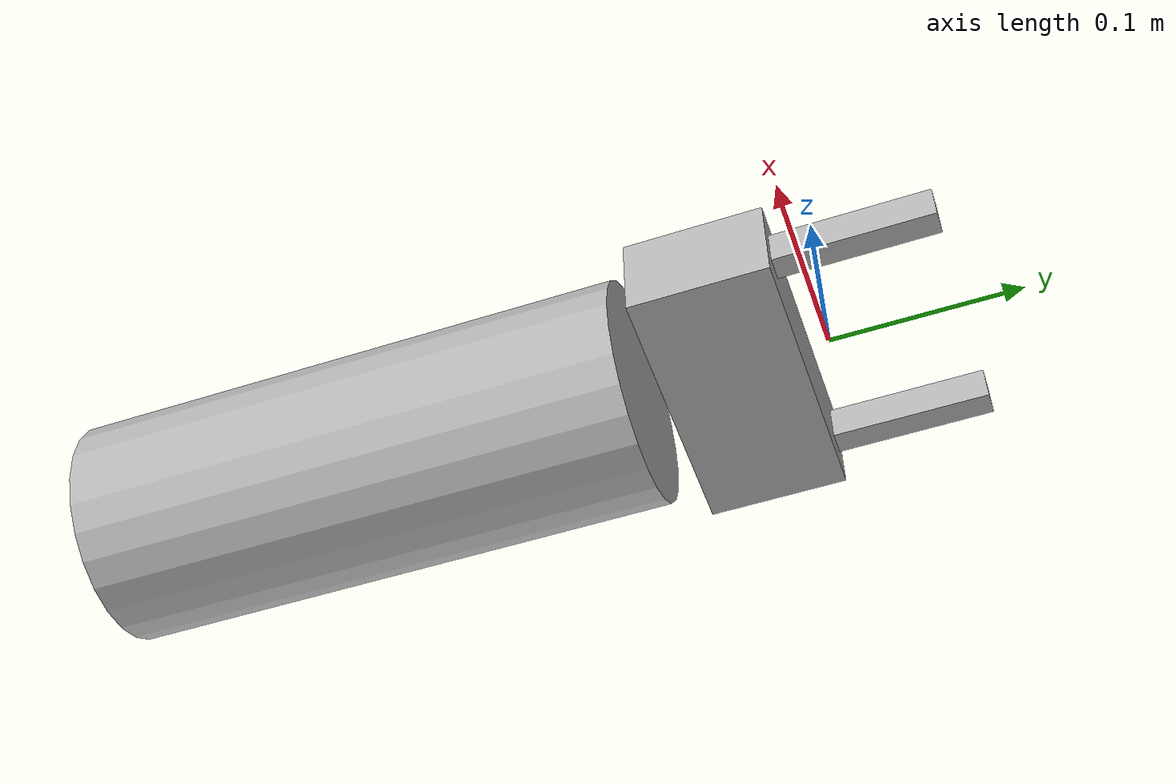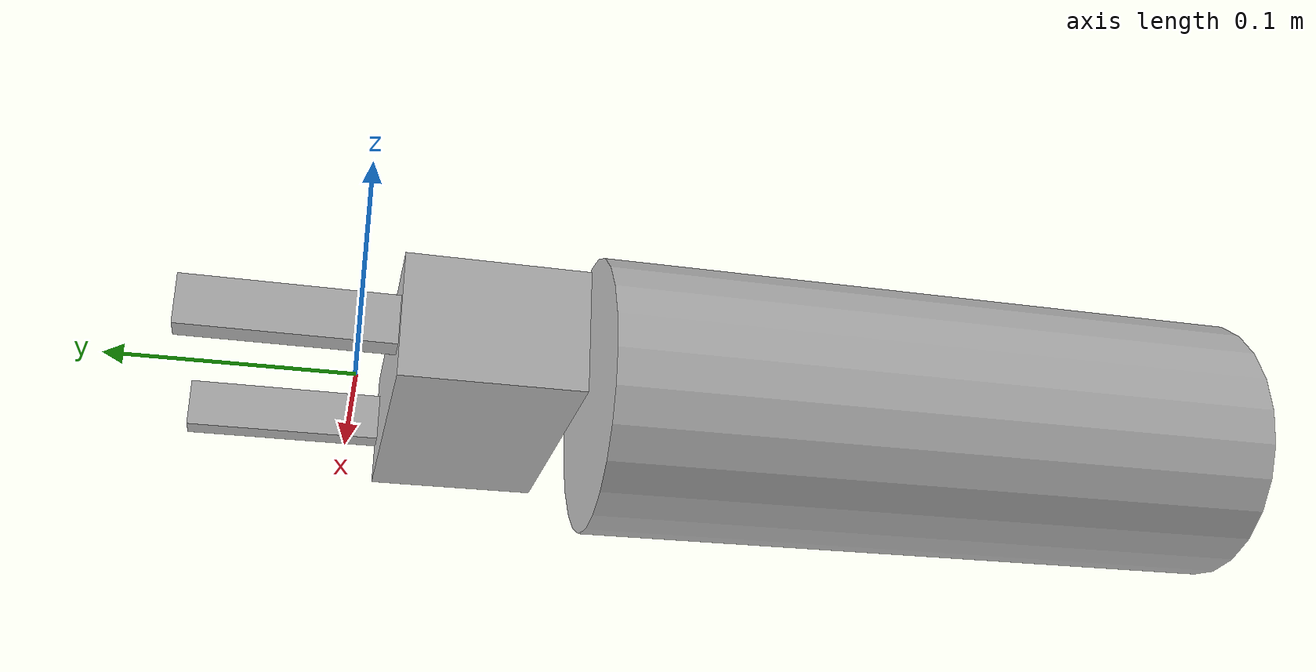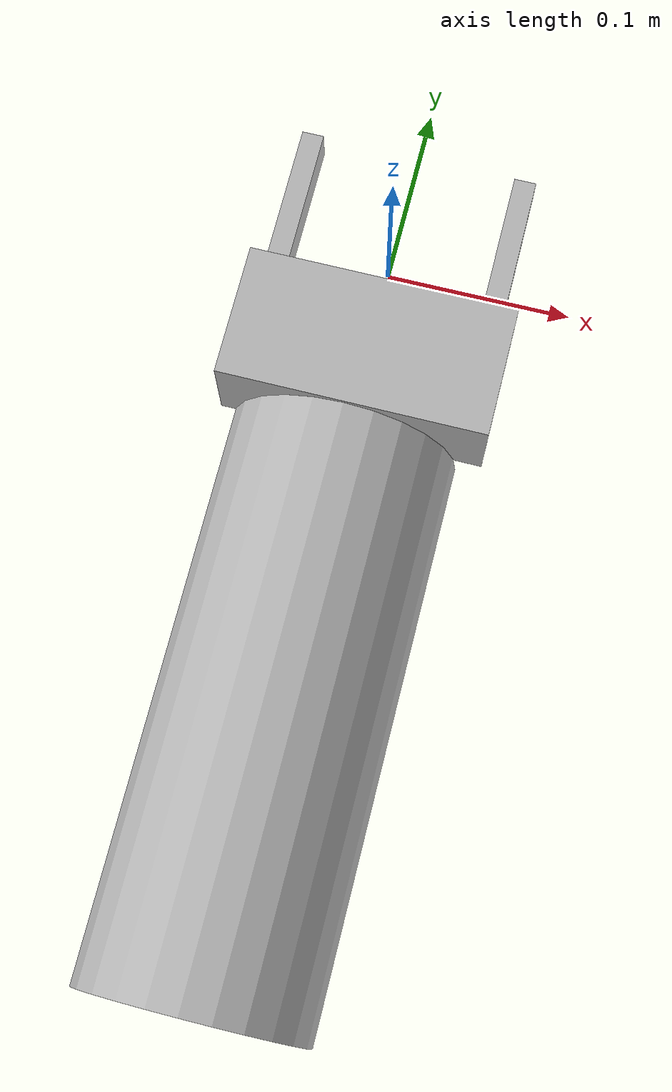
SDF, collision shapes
<?xml version="1.0"?>
<!-- This sdf file is based on schunk_wsg_50.sdf -->
<sdf version="1.7">
  <model name="Schunk_Gripper">
    <link name="body">
      <pose>0 -0.049133 0 0 0 0</pose>
      <inertial>
        <mass>0.988882</mass>
        <inertia>
          <ixx>0.162992</ixx>
          <ixy>0</ixy>
          <ixz>0</ixz>
          <iyy>0.162992</iyy>
          <iyz>0</iyz>
          <izz>0.164814</izz>
        </inertia>
      </inertial>
      <visual name="visual">
        <geometry>
          <mesh>
            <scale>1 1 1</scale>
            <uri>package://drake_models/wsg_50_description/meshes/wsg_body.gltf</uri>
          </mesh>
        </geometry>
      </visual>
      <collision name="collision">
        <geometry>
          <box>
            <size>0.146 0.0725 0.05</size>
          </box>
        </geometry>
      </collision>

      <!-- Mount cylinder extending backward from the gripper body -->
      <visual name="mount_cylinder_visual">
        <pose>0 -0.2 0 0 1.57079632679 1.57079632679</pose>
        <geometry>
          <cylinder>
            <radius>0.06</radius>
            <length>0.30</length>
          </cylinder>
        </geometry>
      </visual>

      <collision name="mount_cylinder_collision">
        <pose>0 -0.2 0 0 1.57079632679 1.57079632679</pose>
        <geometry>
          <cylinder>
            <radius>0.06</radius>
            <length>0.30</length>
          </cylinder>
        </geometry>
      </collision>
    </link>
    <frame name="body_frame">
      <pose relative_to="body"/>
    </frame>
    <link name="left_finger">
      <pose>-0.06 0.028 0 0 3.141592 0</pose>
      <inertial>
        <mass>0.05</mass>
        <inertia>
          <ixx>0.16</ixx>
          <ixy>0</ixy>
          <ixz>0</ixz>
          <iyy>0.16</iyy>
          <iyz>0</iyz>
          <izz>0.16</izz>
        </inertia>
      </inertial>
      <visual name="visual">
        <geometry>
          <mesh>
            <scale>1 1 1</scale>
            <uri>package://drake_models/wsg_50_description/meshes/finger_without_tip.gltf</uri>
          </mesh>
        </geometry>
      </visual>
      <collision name="collision">
        <geometry>
          <box>
            <size>0.012 0.082 0.02</size>
          </box>
        </geometry>
      </collision>
    </link>
    <link name="right_finger">
      <pose>0.06 0.028 0 0 0 0</pose>
      <inertial>
        <mass>0.05</mass>
        <inertia>
          <ixx>0.16</ixx>
          <ixy>0</ixy>
          <ixz>0</ixz>
          <iyy>0.16</iyy>
          <iyz>0</iyz>
          <izz>0.16</izz>
        </inertia>
      </inertial>
      <visual name="visual">
        <geometry>
          <mesh>
            <scale>1 1 1</scale>
            <uri>package://drake_models/wsg_50_description/meshes/finger_without_tip.gltf</uri>
          </mesh>
        </geometry>
      </visual>
      <collision name="collision">
        <geometry>
          <box>
            <size>0.012 0.082 0.02</size>
          </box>
        </geometry>
      </collision>
    </link>
    <joint name="left_finger_sliding_joint" type="fixed">
      <parent>body</parent>
      <child>left_finger</child>
    </joint>
    <joint name="right_finger_sliding_joint" type="fixed">
      <parent>body</parent>
      <child>right_finger</child>
    </joint>
  </model>
</sdf>
